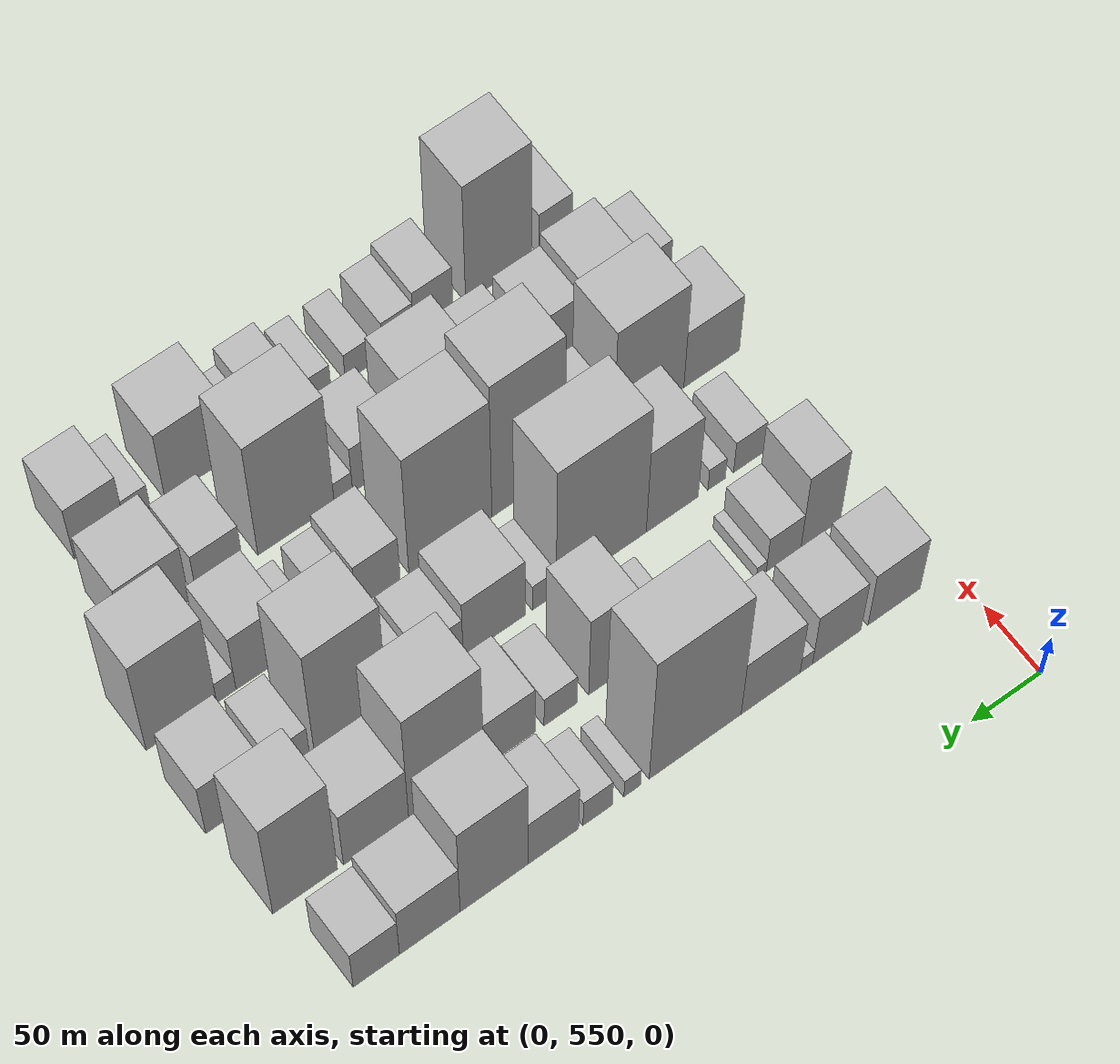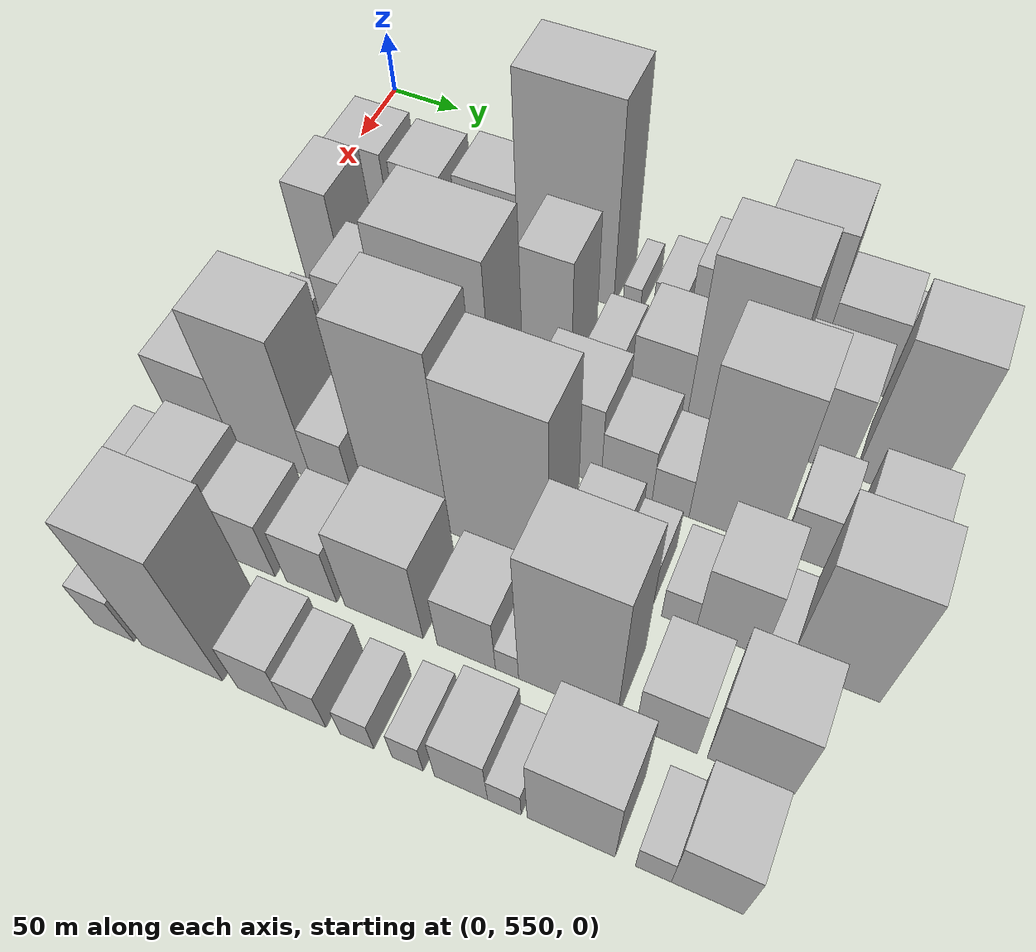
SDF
<sdf version="1.6">
 <world name="default">
  <model name="building_44">
   <static>1</static>
   <pose>100.0000 591.2892 0 0.000000 0.000000 0.000000</pose>
   <link name="link">
    <pose>0 0 34.50 0 0 0</pose>
    <collision name="collision"><geometry><box><size>40.0000 37.7379 69.0000</size></box></geometry></collision>
    <visual name="visual">
     <cast_shadows>0</cast_shadows>
     <geometry><box><size>40.0000 37.7379 69.0000</size></box></geometry>
     <material>
      <script>
       <uri>model://HANNAS_wall/materials/scripts</uri>
       <uri>model://HANNAS_wall/materials/textures</uri>
       <name>vrc/HANNAS_wall</name>
      </script>
     </material>
    </visual>
   </link>
  </model>
  <model name="building_45">
   <static>1</static>
   <pose>100.0000 632.4907 0 0.000000 0.000000 0.000000</pose>
   <link name="link">
    <pose>0 0 33.00 0 0 0</pose>
    <collision name="collision"><geometry><box><size>40.0000 34.6652 66.0000</size></box></geometry></collision>
    <visual name="visual">
     <cast_shadows>0</cast_shadows>
     <geometry><box><size>40.0000 34.6652 66.0000</size></box></geometry>
     <material>
      <script>
       <uri>model://HANNAS_wall/materials/scripts</uri>
       <uri>model://HANNAS_wall/materials/textures</uri>
       <name>vrc/HANNAS_wall</name>
      </script>
     </material>
    </visual>
   </link>
  </model>
  <model name="building_46">
   <static>1</static>
   <pose>100.0000 654.2675 0 0.000000 0.000000 0.000000</pose>
   <link name="link">
    <pose>0 0 10.50 0 0 0</pose>
    <collision name="collision"><geometry><box><size>40.0000 8.8883 21.0000</size></box></geometry></collision>
    <visual name="visual">
     <cast_shadows>0</cast_shadows>
     <geometry><box><size>40.0000 8.8883 21.0000</size></box></geometry>
     <material>
      <script>
       <uri>model://HANNAS_wall/materials/scripts</uri>
       <uri>model://HANNAS_wall/materials/textures</uri>
       <name>vrc/HANNAS_wall</name>
      </script>
     </material>
    </visual>
   </link>
  </model>
  <model name="building_47">
   <static>1</static>
   <pose>100.0000 679.5916 0 0.000000 0.000000 0.000000</pose>
   <link name="link">
    <pose>0 0 36.00 0 0 0</pose>
    <collision name="collision"><geometry><box><size>40.0000 41.7601 72.0000</size></box></geometry></collision>
    <visual name="visual">
     <cast_shadows>0</cast_shadows>
     <geometry><box><size>40.0000 41.7601 72.0000</size></box></geometry>
     <material>
      <script>
       <uri>model://HANNAS_wall/materials/scripts</uri>
       <uri>model://HANNAS_wall/materials/textures</uri>
       <name>vrc/HANNAS_wall</name>
      </script>
     </material>
    </visual>
   </link>
  </model>
  <model name="building_48">
   <static>1</static>
   <pose>100.0000 732.7020 0 0.000000 0.000000 0.000000</pose>
   <link name="link">
    <pose>0 0 84.00 0 0 0</pose>
    <collision name="collision"><geometry><box><size>40.0000 64.4607 168.0000</size></box></geometry></collision>
    <visual name="visual">
     <cast_shadows>0</cast_shadows>
     <geometry><box><size>40.0000 64.4607 168.0000</size></box></geometry>
     <material>
      <script>
       <uri>model://HANNAS_wall/materials/scripts</uri>
       <uri>model://HANNAS_wall/materials/textures</uri>
       <name>vrc/HANNAS_wall</name>
      </script>
     </material>
    </visual>
   </link>
  </model>
  <model name="building_49">
   <static>1</static>
   <pose>100.0000 776.6969 0 0.000000 0.000000 0.000000</pose>
   <link name="link">
    <pose>0 0 12.00 0 0 0</pose>
    <collision name="collision"><geometry><box><size>40.0000 11.5290 24.0000</size></box></geometry></collision>
    <visual name="visual">
     <cast_shadows>0</cast_shadows>
     <geometry><box><size>40.0000 11.5290 24.0000</size></box></geometry>
     <material>
      <script>
       <uri>model://HANNAS_wall/materials/scripts</uri>
       <uri>model://HANNAS_wall/materials/textures</uri>
       <name>vrc/HANNAS_wall</name>
      </script>
     </material>
    </visual>
   </link>
  </model>
  <model name="building_50">
   <static>1</static>
   <pose>100.0000 800.5964 0 0.000000 0.000000 0.000000</pose>
   <link name="link">
    <pose>0 0 18.00 0 0 0</pose>
    <collision name="collision"><geometry><box><size>40.0000 20.2701 36.0000</size></box></geometry></collision>
    <visual name="visual">
     <cast_shadows>0</cast_shadows>
     <geometry><box><size>40.0000 20.2701 36.0000</size></box></geometry>
     <material>
      <script>
       <uri>model://HANNAS_wall/materials/scripts</uri>
       <uri>model://HANNAS_wall/materials/textures</uri>
       <name>vrc/HANNAS_wall</name>
      </script>
     </material>
    </visual>
   </link>
  </model>
  <model name="building_51">
   <static>1</static>
   <pose>100.0000 830.9675 0 0.000000 0.000000 0.000000</pose>
   <link name="link">
    <pose>0 0 31.50 0 0 0</pose>
    <collision name="collision"><geometry><box><size>40.0000 34.4720 63.0000</size></box></geometry></collision>
    <visual name="visual">
     <cast_shadows>0</cast_shadows>
     <geometry><box><size>40.0000 34.4720 63.0000</size></box></geometry>
     <material>
      <script>
       <uri>model://HANNAS_wall/materials/scripts</uri>
       <uri>model://HANNAS_wall/materials/textures</uri>
       <name>vrc/HANNAS_wall</name>
      </script>
     </material>
    </visual>
   </link>
  </model>
  <model name="building_52">
   <static>1</static>
   <pose>100.0000 871.3192 0 0.000000 0.000000 0.000000</pose>
   <link name="link">
    <pose>0 0 61.50 0 0 0</pose>
    <collision name="collision"><geometry><box><size>40.0000 46.2315 123.0000</size></box></geometry></collision>
    <visual name="visual">
     <cast_shadows>0</cast_shadows>
     <geometry><box><size>40.0000 46.2315 123.0000</size></box></geometry>
     <material>
      <script>
       <uri>model://HANNAS_wall/materials/scripts</uri>
       <uri>model://HANNAS_wall/materials/textures</uri>
       <name>vrc/HANNAS_wall</name>
      </script>
     </material>
    </visual>
   </link>
  </model>
  <model name="building_53">
   <static>1</static>
   <pose>100.0000 914.8398 0 0.000000 0.000000 0.000000</pose>
   <link name="link">
    <pose>0 0 34.50 0 0 0</pose>
    <collision name="collision"><geometry><box><size>40.0000 40.8098 69.0000</size></box></geometry></collision>
    <visual name="visual">
     <cast_shadows>0</cast_shadows>
     <geometry><box><size>40.0000 40.8098 69.0000</size></box></geometry>
     <material>
      <script>
       <uri>model://HANNAS_wall/materials/scripts</uri>
       <uri>model://HANNAS_wall/materials/textures</uri>
       <name>vrc/HANNAS_wall</name>
      </script>
     </material>
    </visual>
   </link>
  </model>
  <model name="building_54">
   <static>1</static>
   <pose>100.0000 950.6938 0 0.000000 0.000000 0.000000</pose>
   <link name="link">
    <pose>0 0 27.00 0 0 0</pose>
    <collision name="collision"><geometry><box><size>40.0000 30.8981 54.0000</size></box></geometry></collision>
    <visual name="visual">
     <cast_shadows>0</cast_shadows>
     <geometry><box><size>40.0000 30.8981 54.0000</size></box></geometry>
     <material>
      <script>
       <uri>model://HANNAS_wall/materials/scripts</uri>
       <uri>model://HANNAS_wall/materials/textures</uri>
       <name>vrc/HANNAS_wall</name>
      </script>
     </material>
    </visual>
   </link>
  </model>
  <model name="building_99">
   <static>1</static>
   <pose>160.0000 596.7478 0 0.000000 0.000000 0.000000</pose>
   <link name="link">
    <pose>0 0 46.50 0 0 0</pose>
    <collision name="collision"><geometry><box><size>40.0000 28.4580 93.0000</size></box></geometry></collision>
    <visual name="visual">
     <cast_shadows>0</cast_shadows>
     <geometry><box><size>40.0000 28.4580 93.0000</size></box></geometry>
     <material>
      <script>
       <uri>model://HANNAS_wall/materials/scripts</uri>
       <uri>model://HANNAS_wall/materials/textures</uri>
       <name>vrc/HANNAS_wall</name>
      </script>
     </material>
    </visual>
   </link>
  </model>
  <model name="building_100">
   <static>1</static>
   <pose>160.0000 623.4657 0 0.000000 0.000000 0.000000</pose>
   <link name="link">
    <pose>0 0 22.50 0 0 0</pose>
    <collision name="collision"><geometry><box><size>40.0000 24.9779 45.0000</size></box></geometry></collision>
    <visual name="visual">
     <cast_shadows>0</cast_shadows>
     <geometry><box><size>40.0000 24.9779 45.0000</size></box></geometry>
     <material>
      <script>
       <uri>model://HANNAS_wall/materials/scripts</uri>
       <uri>model://HANNAS_wall/materials/textures</uri>
       <name>vrc/HANNAS_wall</name>
      </script>
     </material>
    </visual>
   </link>
  </model>
  <model name="building_101">
   <static>1</static>
   <pose>160.0000 639.5584 0 0.000000 0.000000 0.000000</pose>
   <link name="link">
    <pose>0 0 7.50 0 0 0</pose>
    <collision name="collision"><geometry><box><size>40.0000 7.2074 15.0000</size></box></geometry></collision>
    <visual name="visual">
     <cast_shadows>0</cast_shadows>
     <geometry><box><size>40.0000 7.2074 15.0000</size></box></geometry>
     <material>
      <script>
       <uri>model://HANNAS_wall/materials/scripts</uri>
       <uri>model://HANNAS_wall/materials/textures</uri>
       <name>vrc/HANNAS_wall</name>
      </script>
     </material>
    </visual>
   </link>
  </model>
  <model name="building_102">
   <static>1</static>
   <pose>160.0000 710.2720 0 0.000000 0.000000 0.000000</pose>
   <link name="link">
    <pose>0 0 18.00 0 0 0</pose>
    <collision name="collision"><geometry><box><size>40.0000 20.0733 36.0000</size></box></geometry></collision>
    <visual name="visual">
     <cast_shadows>0</cast_shadows>
     <geometry><box><size>40.0000 20.0733 36.0000</size></box></geometry>
     <material>
      <script>
       <uri>model://HANNAS_wall/materials/scripts</uri>
       <uri>model://HANNAS_wall/materials/textures</uri>
       <name>vrc/HANNAS_wall</name>
      </script>
     </material>
    </visual>
   </link>
  </model>
  <model name="building_103">
   <static>1</static>
   <pose>160.0000 745.5565 0 0.000000 0.000000 0.000000</pose>
   <link name="link">
    <pose>0 0 52.50 0 0 0</pose>
    <collision name="collision"><geometry><box><size>40.0000 32.4956 105.0000</size></box></geometry></collision>
    <visual name="visual">
     <cast_shadows>0</cast_shadows>
     <geometry><box><size>40.0000 32.4956 105.0000</size></box></geometry>
     <material>
      <script>
       <uri>model://HANNAS_wall/materials/scripts</uri>
       <uri>model://HANNAS_wall/materials/textures</uri>
       <name>vrc/HANNAS_wall</name>
      </script>
     </material>
    </visual>
   </link>
  </model>
  <model name="building_104">
   <static>1</static>
   <pose>160.0000 781.3296 0 0.000000 0.000000 0.000000</pose>
   <link name="link">
    <pose>0 0 19.50 0 0 0</pose>
    <collision name="collision"><geometry><box><size>40.0000 23.0507 39.0000</size></box></geometry></collision>
    <visual name="visual">
     <cast_shadows>0</cast_shadows>
     <geometry><box><size>40.0000 23.0507 39.0000</size></box></geometry>
     <material>
      <script>
       <uri>model://HANNAS_wall/materials/scripts</uri>
       <uri>model://HANNAS_wall/materials/textures</uri>
       <name>vrc/HANNAS_wall</name>
      </script>
     </material>
    </visual>
   </link>
  </model>
  <model name="building_105">
   <static>1</static>
   <pose>160.0000 816.6064 0 0.000000 0.000000 0.000000</pose>
   <link name="link">
    <pose>0 0 31.50 0 0 0</pose>
    <collision name="collision"><geometry><box><size>40.0000 35.5027 63.0000</size></box></geometry></collision>
    <visual name="visual">
     <cast_shadows>0</cast_shadows>
     <geometry><box><size>40.0000 35.5027 63.0000</size></box></geometry>
     <material>
      <script>
       <uri>model://HANNAS_wall/materials/scripts</uri>
       <uri>model://HANNAS_wall/materials/textures</uri>
       <name>vrc/HANNAS_wall</name>
      </script>
     </material>
    </visual>
   </link>
  </model>
  <model name="building_106">
   <static>1</static>
   <pose>160.0000 860.0116 0 0.000000 0.000000 0.000000</pose>
   <link name="link">
    <pose>0 0 73.50 0 0 0</pose>
    <collision name="collision"><geometry><box><size>40.0000 51.3078 147.0000</size></box></geometry></collision>
    <visual name="visual">
     <cast_shadows>0</cast_shadows>
     <geometry><box><size>40.0000 51.3078 147.0000</size></box></geometry>
     <material>
      <script>
       <uri>model://HANNAS_wall/materials/scripts</uri>
       <uri>model://HANNAS_wall/materials/textures</uri>
       <name>vrc/HANNAS_wall</name>
      </script>
     </material>
    </visual>
   </link>
  </model>
  <model name="building_107">
   <static>1</static>
   <pose>160.0000 907.7728 0 0.000000 0.000000 0.000000</pose>
   <link name="link">
    <pose>0 0 37.50 0 0 0</pose>
    <collision name="collision"><geometry><box><size>40.0000 44.2146 75.0000</size></box></geometry></collision>
    <visual name="visual">
     <cast_shadows>0</cast_shadows>
     <geometry><box><size>40.0000 44.2146 75.0000</size></box></geometry>
     <material>
      <script>
       <uri>model://HANNAS_wall/materials/scripts</uri>
       <uri>model://HANNAS_wall/materials/textures</uri>
       <name>vrc/HANNAS_wall</name>
      </script>
     </material>
    </visual>
   </link>
  </model>
  <model name="building_108">
   <static>1</static>
   <pose>160.0000 955.5445 0 0.000000 0.000000 0.000000</pose>
   <link name="link">
    <pose>0 0 66.00 0 0 0</pose>
    <collision name="collision"><geometry><box><size>40.0000 43.3289 132.0000</size></box></geometry></collision>
    <visual name="visual">
     <cast_shadows>0</cast_shadows>
     <geometry><box><size>40.0000 43.3289 132.0000</size></box></geometry>
     <material>
      <script>
       <uri>model://HANNAS_wall/materials/scripts</uri>
       <uri>model://HANNAS_wall/materials/textures</uri>
       <name>vrc/HANNAS_wall</name>
      </script>
     </material>
    </visual>
   </link>
  </model>
  <model name="building_155">
   <static>1</static>
   <pose>220.0000 601.5917 0 0.000000 0.000000 0.000000</pose>
   <link name="link">
    <pose>0 0 19.50 0 0 0</pose>
    <collision name="collision"><geometry><box><size>40.0000 22.5519 39.0000</size></box></geometry></collision>
    <visual name="visual">
     <cast_shadows>0</cast_shadows>
     <geometry><box><size>40.0000 22.5519 39.0000</size></box></geometry>
     <material>
      <script>
       <uri>model://HANNAS_wall/materials/scripts</uri>
       <uri>model://HANNAS_wall/materials/textures</uri>
       <name>vrc/HANNAS_wall</name>
      </script>
     </material>
    </visual>
   </link>
  </model>
  <model name="building_156">
   <static>1</static>
   <pose>220.0000 625.1853 0 0.000000 0.000000 0.000000</pose>
   <link name="link">
    <pose>0 0 13.50 0 0 0</pose>
    <collision name="collision"><geometry><box><size>40.0000 12.6353 27.0000</size></box></geometry></collision>
    <visual name="visual">
     <cast_shadows>0</cast_shadows>
     <geometry><box><size>40.0000 12.6353 27.0000</size></box></geometry>
     <material>
      <script>
       <uri>model://HANNAS_wall/materials/scripts</uri>
       <uri>model://HANNAS_wall/materials/textures</uri>
       <name>vrc/HANNAS_wall</name>
      </script>
     </material>
    </visual>
   </link>
  </model>
  <model name="building_157">
   <static>1</static>
   <pose>220.0000 657.1182 0 0.000000 0.000000 0.000000</pose>
   <link name="link">
    <pose>0 0 52.50 0 0 0</pose>
    <collision name="collision"><geometry><box><size>40.0000 37.2304 105.0000</size></box></geometry></collision>
    <visual name="visual">
     <cast_shadows>0</cast_shadows>
     <geometry><box><size>40.0000 37.2304 105.0000</size></box></geometry>
     <material>
      <script>
       <uri>model://HANNAS_wall/materials/scripts</uri>
       <uri>model://HANNAS_wall/materials/textures</uri>
       <name>vrc/HANNAS_wall</name>
      </script>
     </material>
    </visual>
   </link>
  </model>
  <model name="building_158">
   <static>1</static>
   <pose>220.0000 707.7376 0 0.000000 0.000000 0.000000</pose>
   <link name="link">
    <pose>0 0 81.00 0 0 0</pose>
    <collision name="collision"><geometry><box><size>40.0000 64.0084 162.0000</size></box></geometry></collision>
    <visual name="visual">
     <cast_shadows>0</cast_shadows>
     <geometry><box><size>40.0000 64.0084 162.0000</size></box></geometry>
     <material>
      <script>
       <uri>model://HANNAS_wall/materials/scripts</uri>
       <uri>model://HANNAS_wall/materials/textures</uri>
       <name>vrc/HANNAS_wall</name>
      </script>
     </material>
    </visual>
   </link>
  </model>
  <model name="building_159">
   <static>1</static>
   <pose>220.0000 748.0587 0 0.000000 0.000000 0.000000</pose>
   <link name="link">
    <pose>0 0 16.50 0 0 0</pose>
    <collision name="collision"><geometry><box><size>40.0000 16.6338 33.0000</size></box></geometry></collision>
    <visual name="visual">
     <cast_shadows>0</cast_shadows>
     <geometry><box><size>40.0000 16.6338 33.0000</size></box></geometry>
     <material>
      <script>
       <uri>model://HANNAS_wall/materials/scripts</uri>
       <uri>model://HANNAS_wall/materials/textures</uri>
       <name>vrc/HANNAS_wall</name>
      </script>
     </material>
    </visual>
   </link>
  </model>
  <model name="building_160">
   <static>1</static>
   <pose>220.0000 783.0269 0 0.000000 0.000000 0.000000</pose>
   <link name="link">
    <pose>0 0 37.50 0 0 0</pose>
    <collision name="collision"><geometry><box><size>40.0000 43.3027 75.0000</size></box></geometry></collision>
    <visual name="visual">
     <cast_shadows>0</cast_shadows>
     <geometry><box><size>40.0000 43.3027 75.0000</size></box></geometry>
     <material>
      <script>
       <uri>model://HANNAS_wall/materials/scripts</uri>
       <uri>model://HANNAS_wall/materials/textures</uri>
       <name>vrc/HANNAS_wall</name>
      </script>
     </material>
    </visual>
   </link>
  </model>
  <model name="building_161">
   <static>1</static>
   <pose>220.0000 819.7863 0 0.000000 0.000000 0.000000</pose>
   <link name="link">
    <pose>0 0 27.00 0 0 0</pose>
    <collision name="collision"><geometry><box><size>40.0000 30.2160 54.0000</size></box></geometry></collision>
    <visual name="visual">
     <cast_shadows>0</cast_shadows>
     <geometry><box><size>40.0000 30.2160 54.0000</size></box></geometry>
     <material>
      <script>
       <uri>model://HANNAS_wall/materials/scripts</uri>
       <uri>model://HANNAS_wall/materials/textures</uri>
       <name>vrc/HANNAS_wall</name>
      </script>
     </material>
    </visual>
   </link>
  </model>
  <model name="building_162">
   <static>1</static>
   <pose>220.0000 845.8004 0 0.000000 0.000000 0.000000</pose>
   <link name="link">
    <pose>0 0 19.50 0 0 0</pose>
    <collision name="collision"><geometry><box><size>40.0000 21.8121 39.0000</size></box></geometry></collision>
    <visual name="visual">
     <cast_shadows>0</cast_shadows>
     <geometry><box><size>40.0000 21.8121 39.0000</size></box></geometry>
     <material>
      <script>
       <uri>model://HANNAS_wall/materials/scripts</uri>
       <uri>model://HANNAS_wall/materials/textures</uri>
       <name>vrc/HANNAS_wall</name>
      </script>
     </material>
    </visual>
   </link>
  </model>
  <model name="building_163">
   <static>1</static>
   <pose>220.0000 881.5925 0 0.000000 0.000000 0.000000</pose>
   <link name="link">
    <pose>0 0 73.50 0 0 0</pose>
    <collision name="collision"><geometry><box><size>40.0000 49.7721 147.0000</size></box></geometry></collision>
    <visual name="visual">
     <cast_shadows>0</cast_shadows>
     <geometry><box><size>40.0000 49.7721 147.0000</size></box></geometry>
     <material>
      <script>
       <uri>model://HANNAS_wall/materials/scripts</uri>
       <uri>model://HANNAS_wall/materials/textures</uri>
       <name>vrc/HANNAS_wall</name>
      </script>
     </material>
    </visual>
   </link>
  </model>
  <model name="building_164">
   <static>1</static>
   <pose>220.0000 922.5987 0 0.000000 0.000000 0.000000</pose>
   <link name="link">
    <pose>0 0 25.50 0 0 0</pose>
    <collision name="collision"><geometry><box><size>40.0000 26.2402 51.0000</size></box></geometry></collision>
    <visual name="visual">
     <cast_shadows>0</cast_shadows>
     <geometry><box><size>40.0000 26.2402 51.0000</size></box></geometry>
     <material>
      <script>
       <uri>model://HANNAS_wall/materials/scripts</uri>
       <uri>model://HANNAS_wall/materials/textures</uri>
       <name>vrc/HANNAS_wall</name>
      </script>
     </material>
    </visual>
   </link>
  </model>
  <model name="building_165">
   <static>1</static>
   <pose>220.0000 960.9531 0 0.000000 0.000000 0.000000</pose>
   <link name="link">
    <pose>0 0 34.50 0 0 0</pose>
    <collision name="collision"><geometry><box><size>40.0000 38.4686 69.0000</size></box></geometry></collision>
    <visual name="visual">
     <cast_shadows>0</cast_shadows>
     <geometry><box><size>40.0000 38.4686 69.0000</size></box></geometry>
     <material>
      <script>
       <uri>model://HANNAS_wall/materials/scripts</uri>
       <uri>model://HANNAS_wall/materials/textures</uri>
       <name>vrc/HANNAS_wall</name>
      </script>
     </material>
    </visual>
   </link>
  </model>
  <model name="building_204">
   <static>1</static>
   <pose>280.0000 582.5009 0 0.000000 0.000000 0.000000</pose>
   <link name="link">
    <pose>0 0 34.50 0 0 0</pose>
    <collision name="collision"><geometry><box><size>40.0000 40.6454 69.0000</size></box></geometry></collision>
    <visual name="visual">
     <cast_shadows>0</cast_shadows>
     <geometry><box><size>40.0000 40.6454 69.0000</size></box></geometry>
     <material>
      <script>
       <uri>model://HANNAS_wall/materials/scripts</uri>
       <uri>model://HANNAS_wall/materials/textures</uri>
       <name>vrc/HANNAS_wall</name>
      </script>
     </material>
    </visual>
   </link>
  </model>
  <model name="building_205">
   <static>1</static>
   <pose>280.0000 628.2506 0 0.000000 0.000000 0.000000</pose>
   <link name="link">
    <pose>0 0 64.50 0 0 0</pose>
    <collision name="collision"><geometry><box><size>40.0000 50.8539 129.0000</size></box></geometry></collision>
    <visual name="visual">
     <cast_shadows>0</cast_shadows>
     <geometry><box><size>40.0000 50.8539 129.0000</size></box></geometry>
     <material>
      <script>
       <uri>model://HANNAS_wall/materials/scripts</uri>
       <uri>model://HANNAS_wall/materials/textures</uri>
       <name>vrc/HANNAS_wall</name>
      </script>
     </material>
    </visual>
   </link>
  </model>
  <model name="building_206">
   <static>1</static>
   <pose>280.0000 666.8454 0 0.000000 0.000000 0.000000</pose>
   <link name="link">
    <pose>0 0 25.50 0 0 0</pose>
    <collision name="collision"><geometry><box><size>40.0000 26.3356 51.0000</size></box></geometry></collision>
    <visual name="visual">
     <cast_shadows>0</cast_shadows>
     <geometry><box><size>40.0000 26.3356 51.0000</size></box></geometry>
     <material>
      <script>
       <uri>model://HANNAS_wall/materials/scripts</uri>
       <uri>model://HANNAS_wall/materials/textures</uri>
       <name>vrc/HANNAS_wall</name>
      </script>
     </material>
    </visual>
   </link>
  </model>
  <model name="building_207">
   <static>1</static>
   <pose>280.0000 714.8054 0 0.000000 0.000000 0.000000</pose>
   <link name="link">
    <pose>0 0 84.00 0 0 0</pose>
    <collision name="collision"><geometry><box><size>40.0000 51.5845 168.0000</size></box></geometry></collision>
    <visual name="visual">
     <cast_shadows>0</cast_shadows>
     <geometry><box><size>40.0000 51.5845 168.0000</size></box></geometry>
     <material>
      <script>
       <uri>model://HANNAS_wall/materials/scripts</uri>
       <uri>model://HANNAS_wall/materials/textures</uri>
       <name>vrc/HANNAS_wall</name>
      </script>
     </material>
    </visual>
   </link>
  </model>
  <model name="building_208">
   <static>1</static>
   <pose>280.0000 769.8180 0 0.000000 0.000000 0.000000</pose>
   <link name="link">
    <pose>0 0 75.00 0 0 0</pose>
    <collision name="collision"><geometry><box><size>40.0000 58.4406 150.0000</size></box></geometry></collision>
    <visual name="visual">
     <cast_shadows>0</cast_shadows>
     <geometry><box><size>40.0000 58.4406 150.0000</size></box></geometry>
     <material>
      <script>
       <uri>model://HANNAS_wall/materials/scripts</uri>
       <uri>model://HANNAS_wall/materials/textures</uri>
       <name>vrc/HANNAS_wall</name>
      </script>
     </material>
    </visual>
   </link>
  </model>
  <model name="building_209">
   <static>1</static>
   <pose>280.0000 820.3462 0 0.000000 0.000000 0.000000</pose>
   <link name="link">
    <pose>0 0 28.50 0 0 0</pose>
    <collision name="collision"><geometry><box><size>40.0000 30.6159 57.0000</size></box></geometry></collision>
    <visual name="visual">
     <cast_shadows>0</cast_shadows>
     <geometry><box><size>40.0000 30.6159 57.0000</size></box></geometry>
     <material>
      <script>
       <uri>model://HANNAS_wall/materials/scripts</uri>
       <uri>model://HANNAS_wall/materials/textures</uri>
       <name>vrc/HANNAS_wall</name>
      </script>
     </material>
    </visual>
   </link>
  </model>
  <model name="building_210">
   <static>1</static>
   <pose>280.0000 846.1853 0 0.000000 0.000000 0.000000</pose>
   <link name="link">
    <pose>0 0 21.00 0 0 0</pose>
    <collision name="collision"><geometry><box><size>40.0000 21.0623 42.0000</size></box></geometry></collision>
    <visual name="visual">
     <cast_shadows>0</cast_shadows>
     <geometry><box><size>40.0000 21.0623 42.0000</size></box></geometry>
     <material>
      <script>
       <uri>model://HANNAS_wall/materials/scripts</uri>
       <uri>model://HANNAS_wall/materials/textures</uri>
       <name>vrc/HANNAS_wall</name>
      </script>
     </material>
    </visual>
   </link>
  </model>
  <model name="building_211">
   <static>1</static>
   <pose>280.0000 872.2209 0 0.000000 0.000000 0.000000</pose>
   <link name="link">
    <pose>0 0 16.50 0 0 0</pose>
    <collision name="collision"><geometry><box><size>40.0000 19.0088 33.0000</size></box></geometry></collision>
    <visual name="visual">
     <cast_shadows>0</cast_shadows>
     <geometry><box><size>40.0000 19.0088 33.0000</size></box></geometry>
     <material>
      <script>
       <uri>model://HANNAS_wall/materials/scripts</uri>
       <uri>model://HANNAS_wall/materials/textures</uri>
       <name>vrc/HANNAS_wall</name>
      </script>
     </material>
    </visual>
   </link>
  </model>
  <model name="building_212">
   <static>1</static>
   <pose>280.0000 899.9423 0 0.000000 0.000000 0.000000</pose>
   <link name="link">
    <pose>0 0 36.00 0 0 0</pose>
    <collision name="collision"><geometry><box><size>40.0000 36.4341 72.0000</size></box></geometry></collision>
    <visual name="visual">
     <cast_shadows>0</cast_shadows>
     <geometry><box><size>40.0000 36.4341 72.0000</size></box></geometry>
     <material>
      <script>
       <uri>model://HANNAS_wall/materials/scripts</uri>
       <uri>model://HANNAS_wall/materials/textures</uri>
       <name>vrc/HANNAS_wall</name>
      </script>
     </material>
    </visual>
   </link>
  </model>
  <model name="building_213">
   <static>1</static>
   <pose>280.0000 924.7579 0 0.000000 0.000000 0.000000</pose>
   <link name="link">
    <pose>0 0 13.50 0 0 0</pose>
    <collision name="collision"><geometry><box><size>40.0000 13.1969 27.0000</size></box></geometry></collision>
    <visual name="visual">
     <cast_shadows>0</cast_shadows>
     <geometry><box><size>40.0000 13.1969 27.0000</size></box></geometry>
     <material>
      <script>
       <uri>model://HANNAS_wall/materials/scripts</uri>
       <uri>model://HANNAS_wall/materials/textures</uri>
       <name>vrc/HANNAS_wall</name>
      </script>
     </material>
    </visual>
   </link>
  </model>
  <model name="building_214">
   <static>1</static>
   <pose>280.0000 955.1423 0 0.000000 0.000000 0.000000</pose>
   <link name="link">
    <pose>0 0 60.00 0 0 0</pose>
    <collision name="collision"><geometry><box><size>40.0000 47.5719 120.0000</size></box></geometry></collision>
    <visual name="visual">
     <cast_shadows>0</cast_shadows>
     <geometry><box><size>40.0000 47.5719 120.0000</size></box></geometry>
     <material>
      <script>
       <uri>model://HANNAS_wall/materials/scripts</uri>
       <uri>model://HANNAS_wall/materials/textures</uri>
       <name>vrc/HANNAS_wall</name>
      </script>
     </material>
    </visual>
   </link>
  </model>
  <model name="building_255">
   <static>1</static>
   <pose>340.0000 580.3014 0 0.000000 0.000000 0.000000</pose>
   <link name="link">
    <pose>0 0 25.50 0 0 0</pose>
    <collision name="collision"><geometry><box><size>40.0000 26.6256 51.0000</size></box></geometry></collision>
    <visual name="visual">
     <cast_shadows>0</cast_shadows>
     <geometry><box><size>40.0000 26.6256 51.0000</size></box></geometry>
     <material>
      <script>
       <uri>model://HANNAS_wall/materials/scripts</uri>
       <uri>model://HANNAS_wall/materials/textures</uri>
       <name>vrc/HANNAS_wall</name>
      </script>
     </material>
    </visual>
   </link>
  </model>
  <model name="building_256">
   <static>1</static>
   <pose>340.0000 612.9946 0 0.000000 0.000000 0.000000</pose>
   <link name="link">
    <pose>0 0 36.00 0 0 0</pose>
    <collision name="collision"><geometry><box><size>40.0000 38.7609 72.0000</size></box></geometry></collision>
    <visual name="visual">
     <cast_shadows>0</cast_shadows>
     <geometry><box><size>40.0000 38.7609 72.0000</size></box></geometry>
     <material>
      <script>
       <uri>model://HANNAS_wall/materials/scripts</uri>
       <uri>model://HANNAS_wall/materials/textures</uri>
       <name>vrc/HANNAS_wall</name>
      </script>
     </material>
    </visual>
   </link>
  </model>
  <model name="building_257">
   <static>1</static>
   <pose>340.0000 649.2967 0 0.000000 0.000000 0.000000</pose>
   <link name="link">
    <pose>0 0 28.50 0 0 0</pose>
    <collision name="collision"><geometry><box><size>40.0000 33.8432 57.0000</size></box></geometry></collision>
    <visual name="visual">
     <cast_shadows>0</cast_shadows>
     <geometry><box><size>40.0000 33.8432 57.0000</size></box></geometry>
     <material>
      <script>
       <uri>model://HANNAS_wall/materials/scripts</uri>
       <uri>model://HANNAS_wall/materials/textures</uri>
       <name>vrc/HANNAS_wall</name>
      </script>
     </material>
    </visual>
   </link>
  </model>
  <model name="building_258">
   <static>1</static>
   <pose>340.0000 688.3712 0 0.000000 0.000000 0.000000</pose>
   <link name="link">
    <pose>0 0 28.50 0 0 0</pose>
    <collision name="collision"><geometry><box><size>40.0000 30.3059 57.0000</size></box></geometry></collision>
    <visual name="visual">
     <cast_shadows>0</cast_shadows>
     <geometry><box><size>40.0000 30.3059 57.0000</size></box></geometry>
     <material>
      <script>
       <uri>model://HANNAS_wall/materials/scripts</uri>
       <uri>model://HANNAS_wall/materials/textures</uri>
       <name>vrc/HANNAS_wall</name>
      </script>
     </material>
    </visual>
   </link>
  </model>
  <model name="building_259">
   <static>1</static>
   <pose>340.0000 731.4195 0 0.000000 0.000000 0.000000</pose>
   <link name="link">
    <pose>0 0 42.00 0 0 0</pose>
    <collision name="collision"><geometry><box><size>40.0000 45.7906 84.0000</size></box></geometry></collision>
    <visual name="visual">
     <cast_shadows>0</cast_shadows>
     <geometry><box><size>40.0000 45.7906 84.0000</size></box></geometry>
     <material>
      <script>
       <uri>model://HANNAS_wall/materials/scripts</uri>
       <uri>model://HANNAS_wall/materials/textures</uri>
       <name>vrc/HANNAS_wall</name>
      </script>
     </material>
    </visual>
   </link>
  </model>
  <model name="building_260">
   <static>1</static>
   <pose>340.0000 778.7684 0 0.000000 0.000000 0.000000</pose>
   <link name="link">
    <pose>0 0 28.50 0 0 0</pose>
    <collision name="collision"><geometry><box><size>40.0000 32.9073 57.0000</size></box></geometry></collision>
    <visual name="visual">
     <cast_shadows>0</cast_shadows>
     <geometry><box><size>40.0000 32.9073 57.0000</size></box></geometry>
     <material>
      <script>
       <uri>model://HANNAS_wall/materials/scripts</uri>
       <uri>model://HANNAS_wall/materials/textures</uri>
       <name>vrc/HANNAS_wall</name>
      </script>
     </material>
    </visual>
   </link>
  </model>
  <model name="building_261">
   <static>1</static>
   <pose>340.0000 801.6541 0 0.000000 0.000000 0.000000</pose>
   <link name="link">
    <pose>0 0 13.50 0 0 0</pose>
    <collision name="collision"><geometry><box><size>40.0000 12.8640 27.0000</size></box></geometry></collision>
    <visual name="visual">
     <cast_shadows>0</cast_shadows>
     <geometry><box><size>40.0000 12.8640 27.0000</size></box></geometry>
     <material>
      <script>
       <uri>model://HANNAS_wall/materials/scripts</uri>
       <uri>model://HANNAS_wall/materials/textures</uri>
       <name>vrc/HANNAS_wall</name>
      </script>
     </material>
    </visual>
   </link>
  </model>
  <model name="building_262">
   <static>1</static>
   <pose>340.0000 834.7423 0 0.000000 0.000000 0.000000</pose>
   <link name="link">
    <pose>0 0 70.50 0 0 0</pose>
    <collision name="collision"><geometry><box><size>40.0000 53.3125 141.0000</size></box></geometry></collision>
    <visual name="visual">
     <cast_shadows>0</cast_shadows>
     <geometry><box><size>40.0000 53.3125 141.0000</size></box></geometry>
     <material>
      <script>
       <uri>model://HANNAS_wall/materials/scripts</uri>
       <uri>model://HANNAS_wall/materials/textures</uri>
       <name>vrc/HANNAS_wall</name>
      </script>
     </material>
    </visual>
   </link>
  </model>
  <model name="building_263">
   <static>1</static>
   <pose>340.0000 887.4279 0 0.000000 0.000000 0.000000</pose>
   <link name="link">
    <pose>0 0 27.00 0 0 0</pose>
    <collision name="collision"><geometry><box><size>40.0000 32.0586 54.0000</size></box></geometry></collision>
    <visual name="visual">
     <cast_shadows>0</cast_shadows>
     <geometry><box><size>40.0000 32.0586 54.0000</size></box></geometry>
     <material>
      <script>
       <uri>model://HANNAS_wall/materials/scripts</uri>
       <uri>model://HANNAS_wall/materials/textures</uri>
       <name>vrc/HANNAS_wall</name>
      </script>
     </material>
    </visual>
   </link>
  </model>
  <model name="building_264">
   <static>1</static>
   <pose>340.0000 930.4950 0 0.000000 0.000000 0.000000</pose>
   <link name="link">
    <pose>0 0 37.50 0 0 0</pose>
    <collision name="collision"><geometry><box><size>40.0000 44.0757 75.0000</size></box></geometry></collision>
    <visual name="visual">
     <cast_shadows>0</cast_shadows>
     <geometry><box><size>40.0000 44.0757 75.0000</size></box></geometry>
     <material>
      <script>
       <uri>model://HANNAS_wall/materials/scripts</uri>
       <uri>model://HANNAS_wall/materials/textures</uri>
       <name>vrc/HANNAS_wall</name>
      </script>
     </material>
    </visual>
   </link>
  </model>
  <model name="building_309">
   <static>1</static>
   <pose>400.0000 605.8996 0 0.000000 0.000000 0.000000</pose>
   <link name="link">
    <pose>0 0 24.00 0 0 0</pose>
    <collision name="collision"><geometry><box><size>40.0000 24.6595 48.0000</size></box></geometry></collision>
    <visual name="visual">
     <cast_shadows>0</cast_shadows>
     <geometry><box><size>40.0000 24.6595 48.0000</size></box></geometry>
     <material>
      <script>
       <uri>model://HANNAS_wall/materials/scripts</uri>
       <uri>model://HANNAS_wall/materials/textures</uri>
       <name>vrc/HANNAS_wall</name>
      </script>
     </material>
    </visual>
   </link>
  </model>
  <model name="building_310">
   <static>1</static>
   <pose>400.0000 647.3469 0 0.000000 0.000000 0.000000</pose>
   <link name="link">
    <pose>0 0 69.00 0 0 0</pose>
    <collision name="collision"><geometry><box><size>40.0000 48.2350 138.0000</size></box></geometry></collision>
    <visual name="visual">
     <cast_shadows>0</cast_shadows>
     <geometry><box><size>40.0000 48.2350 138.0000</size></box></geometry>
     <material>
      <script>
       <uri>model://HANNAS_wall/materials/scripts</uri>
       <uri>model://HANNAS_wall/materials/textures</uri>
       <name>vrc/HANNAS_wall</name>
      </script>
     </material>
    </visual>
   </link>
  </model>
  <model name="building_311">
   <static>1</static>
   <pose>400.0000 694.6422 0 0.000000 0.000000 0.000000</pose>
   <link name="link">
    <pose>0 0 27.00 0 0 0</pose>
    <collision name="collision"><geometry><box><size>40.0000 28.3555 54.0000</size></box></geometry></collision>
    <visual name="visual">
     <cast_shadows>0</cast_shadows>
     <geometry><box><size>40.0000 28.3555 54.0000</size></box></geometry>
     <material>
      <script>
       <uri>model://HANNAS_wall/materials/scripts</uri>
       <uri>model://HANNAS_wall/materials/textures</uri>
       <name>vrc/HANNAS_wall</name>
      </script>
     </material>
    </visual>
   </link>
  </model>
  <model name="building_312">
   <static>1</static>
   <pose>400.0000 719.8771 0 0.000000 0.000000 0.000000</pose>
   <link name="link">
    <pose>0 0 21.00 0 0 0</pose>
    <collision name="collision"><geometry><box><size>40.0000 22.1143 42.0000</size></box></geometry></collision>
    <visual name="visual">
     <cast_shadows>0</cast_shadows>
     <geometry><box><size>40.0000 22.1143 42.0000</size></box></geometry>
     <material>
      <script>
       <uri>model://HANNAS_wall/materials/scripts</uri>
       <uri>model://HANNAS_wall/materials/textures</uri>
       <name>vrc/HANNAS_wall</name>
      </script>
     </material>
    </visual>
   </link>
  </model>
  <model name="building_313">
   <static>1</static>
   <pose>400.0000 748.2963 0 0.000000 0.000000 0.000000</pose>
   <link name="link">
    <pose>0 0 16.50 0 0 0</pose>
    <collision name="collision"><geometry><box><size>40.0000 18.7242 33.0000</size></box></geometry></collision>
    <visual name="visual">
     <cast_shadows>0</cast_shadows>
     <geometry><box><size>40.0000 18.7242 33.0000</size></box></geometry>
     <material>
      <script>
       <uri>model://HANNAS_wall/materials/scripts</uri>
       <uri>model://HANNAS_wall/materials/textures</uri>
       <name>vrc/HANNAS_wall</name>
      </script>
     </material>
    </visual>
   </link>
  </model>
  <model name="building_314">
   <static>1</static>
   <pose>400.0000 776.1477 0 0.000000 0.000000 0.000000</pose>
   <link name="link">
    <pose>0 0 16.50 0 0 0</pose>
    <collision name="collision"><geometry><box><size>40.0000 16.9786 33.0000</size></box></geometry></collision>
    <visual name="visual">
     <cast_shadows>0</cast_shadows>
     <geometry><box><size>40.0000 16.9786 33.0000</size></box></geometry>
     <material>
      <script>
       <uri>model://HANNAS_wall/materials/scripts</uri>
       <uri>model://HANNAS_wall/materials/textures</uri>
       <name>vrc/HANNAS_wall</name>
      </script>
     </material>
    </visual>
   </link>
  </model>
  <model name="building_315">
   <static>1</static>
   <pose>400.0000 804.7374 0 0.000000 0.000000 0.000000</pose>
   <link name="link">
    <pose>0 0 25.50 0 0 0</pose>
    <collision name="collision"><geometry><box><size>40.0000 28.2009 51.0000</size></box></geometry></collision>
    <visual name="visual">
     <cast_shadows>0</cast_shadows>
     <geometry><box><size>40.0000 28.2009 51.0000</size></box></geometry>
     <material>
      <script>
       <uri>model://HANNAS_wall/materials/scripts</uri>
       <uri>model://HANNAS_wall/materials/textures</uri>
       <name>vrc/HANNAS_wall</name>
      </script>
     </material>
    </visual>
   </link>
  </model>
  <model name="building_316">
   <static>1</static>
   <pose>400.0000 827.6087 0 0.000000 0.000000 0.000000</pose>
   <link name="link">
    <pose>0 0 15.00 0 0 0</pose>
    <collision name="collision"><geometry><box><size>40.0000 17.5416 30.0000</size></box></geometry></collision>
    <visual name="visual">
     <cast_shadows>0</cast_shadows>
     <geometry><box><size>40.0000 17.5416 30.0000</size></box></geometry>
     <material>
      <script>
       <uri>model://HANNAS_wall/materials/scripts</uri>
       <uri>model://HANNAS_wall/materials/textures</uri>
       <name>vrc/HANNAS_wall</name>
      </script>
     </material>
    </visual>
   </link>
  </model>
  <model name="building_317">
   <static>1</static>
   <pose>400.0000 861.7219 0 0.000000 0.000000 0.000000</pose>
   <link name="link">
    <pose>0 0 42.00 0 0 0</pose>
    <collision name="collision"><geometry><box><size>40.0000 44.6848 84.0000</size></box></geometry></collision>
    <visual name="visual">
     <cast_shadows>0</cast_shadows>
     <geometry><box><size>40.0000 44.6848 84.0000</size></box></geometry>
     <material>
      <script>
       <uri>model://HANNAS_wall/materials/scripts</uri>
       <uri>model://HANNAS_wall/materials/textures</uri>
       <name>vrc/HANNAS_wall</name>
      </script>
     </material>
    </visual>
   </link>
  </model>
  <model name="building_318">
   <static>1</static>
   <pose>400.0000 902.8981 0 0.000000 0.000000 0.000000</pose>
   <link name="link">
    <pose>0 0 16.50 0 0 0</pose>
    <collision name="collision"><geometry><box><size>40.0000 17.6675 33.0000</size></box></geometry></collision>
    <visual name="visual">
     <cast_shadows>0</cast_shadows>
     <geometry><box><size>40.0000 17.6675 33.0000</size></box></geometry>
     <material>
      <script>
       <uri>model://HANNAS_wall/materials/scripts</uri>
       <uri>model://HANNAS_wall/materials/textures</uri>
       <name>vrc/HANNAS_wall</name>
      </script>
     </material>
    </visual>
   </link>
  </model>
  <model name="building_319">
   <static>1</static>
   <pose>400.0000 929.0478 0 0.000000 0.000000 0.000000</pose>
   <link name="link">
    <pose>0 0 33.00 0 0 0</pose>
    <collision name="collision"><geometry><box><size>40.0000 34.6321 66.0000</size></box></geometry></collision>
    <visual name="visual">
     <cast_shadows>0</cast_shadows>
     <geometry><box><size>40.0000 34.6321 66.0000</size></box></geometry>
     <material>
      <script>
       <uri>model://HANNAS_wall/materials/scripts</uri>
       <uri>model://HANNAS_wall/materials/textures</uri>
       <name>vrc/HANNAS_wall</name>
      </script>
     </material>
    </visual>
   </link>
  </model>
 </world>
</sdf>
